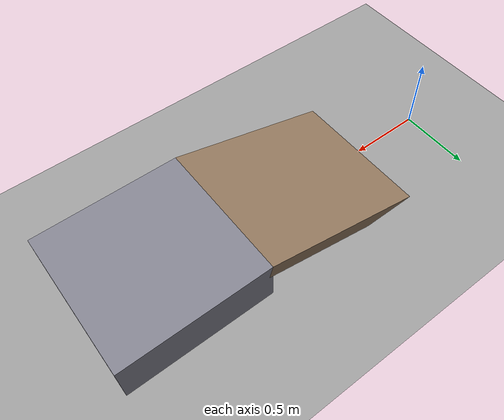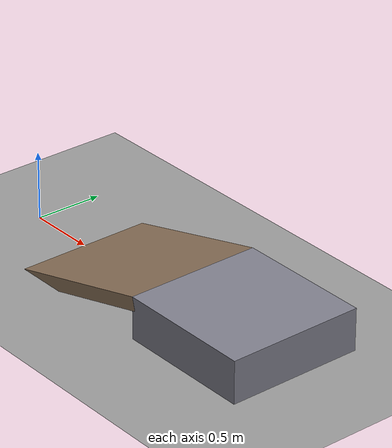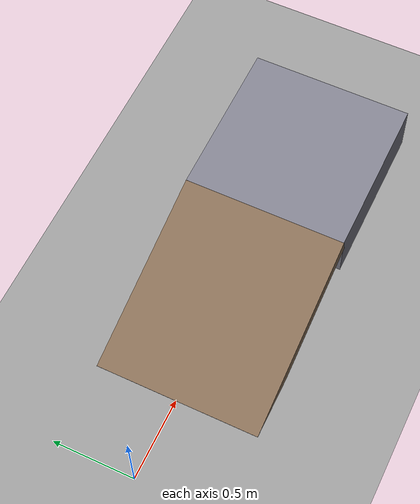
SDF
<?xml version="1.0" ?>
<!-- 15 deg ramp starting at x=0.5 m (for Tripod -> Wave gait switching tests) -->
<sdf version="1.9">
  <world name="ramp">
    <physics name="1ms" type="ignored">
      <max_step_size>0.001</max_step_size>
      <real_time_factor>1.0</real_time_factor>
    </physics>
    <plugin filename="gz-sim-physics-system" name="gz::sim::systems::Physics"/>
    <plugin filename="gz-sim-user-commands-system" name="gz::sim::systems::UserCommands"/>
    <plugin filename="gz-sim-scene-broadcaster-system" name="gz::sim::systems::SceneBroadcaster"/>
    <plugin filename="gz-sim-sensors-system" name="gz::sim::systems::Sensors">
      <render_engine>ogre2</render_engine>
    </plugin>
    <plugin filename="gz-sim-imu-system" name="gz::sim::systems::Imu"/>
    <plugin filename="gz-sim-contact-system" name="gz::sim::systems::Contact"/>

    <light type="directional" name="sun">
      <cast_shadows>true</cast_shadows>
      <pose>0 0 10 0 0 0</pose>
      <diffuse>0.9 0.9 0.9 1</diffuse>
      <specular>0.2 0.2 0.2 1</specular>
      <direction>-0.5 0.1 -0.9</direction>
    </light>

    <model name="ground_plane">
      <static>true</static>
      <link name="link">
        <collision name="collision">
          <geometry><plane><normal>0 0 1</normal><size>100 100</size></plane></geometry>
          <surface><friction><ode><mu>1.0</mu><mu2>1.0</mu2></ode></friction></surface>
        </collision>
        <visual name="visual">
          <geometry><plane><normal>0 0 1</normal><size>100 100</size></plane></geometry>
          <material><ambient>0.6 0.6 0.6 1</ambient><diffuse>0.6 0.6 0.6 1</diffuse></material>
        </visual>
      </link>
    </model>

    <model name="ramp_15deg">
      <static>true</static>
      <pose>1.0925 0 0.1070 0 -0.261799 0</pose>
      <link name="link">
        <collision name="collision">
          <geometry><box><size>1.2 1.0 0.1</size></box></geometry>
          <surface><friction><ode><mu>1.0</mu><mu2>1.0</mu2></ode></friction></surface>
        </collision>
        <visual name="visual">
          <geometry><box><size>1.2 1.0 0.1</size></box></geometry>
          <material><ambient>0.55 0.45 0.35 1</ambient><diffuse>0.55 0.45 0.35 1</diffuse></material>
        </visual>
      </link>
    </model>

    <model name="plateau">
      <static>true</static>
      <pose>2.1591 0 0.1553 0 0 0</pose>
      <link name="link">
        <collision name="collision">
          <geometry><box><size>1.0 1.0 0.3106</size></box></geometry>
          <surface><friction><ode><mu>1.0</mu><mu2>1.0</mu2></ode></friction></surface>
        </collision>
        <visual name="visual">
          <geometry><box><size>1.0 1.0 0.3106</size></box></geometry>
          <material><ambient>0.5 0.5 0.55 1</ambient><diffuse>0.5 0.5 0.55 1</diffuse></material>
        </visual>
      </link>
    </model>
  </world>
</sdf>
